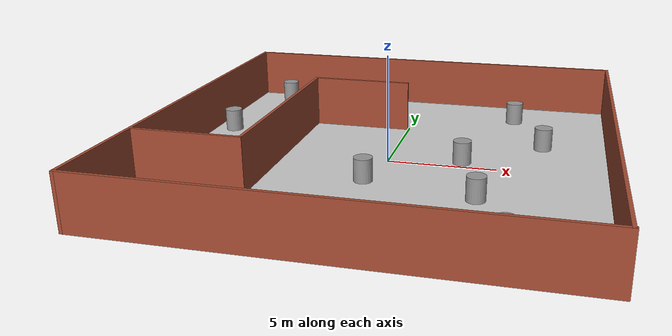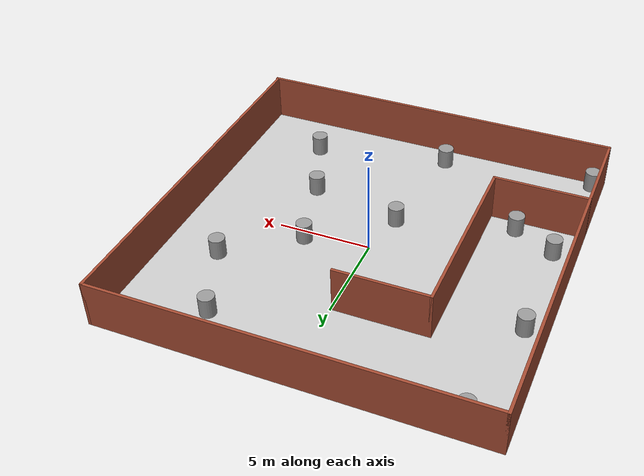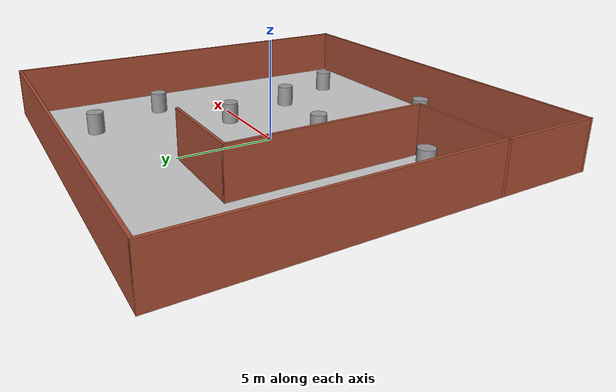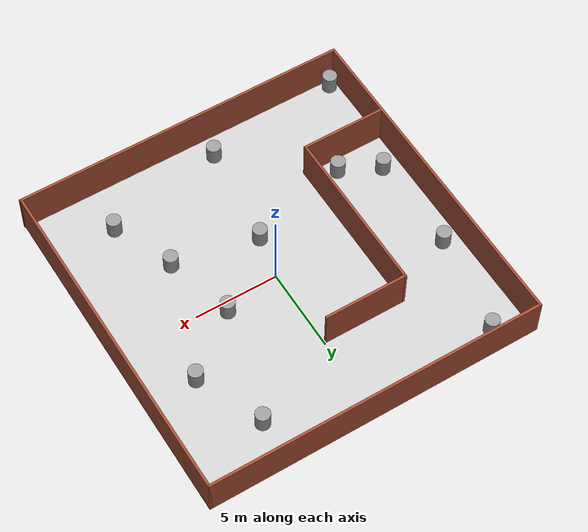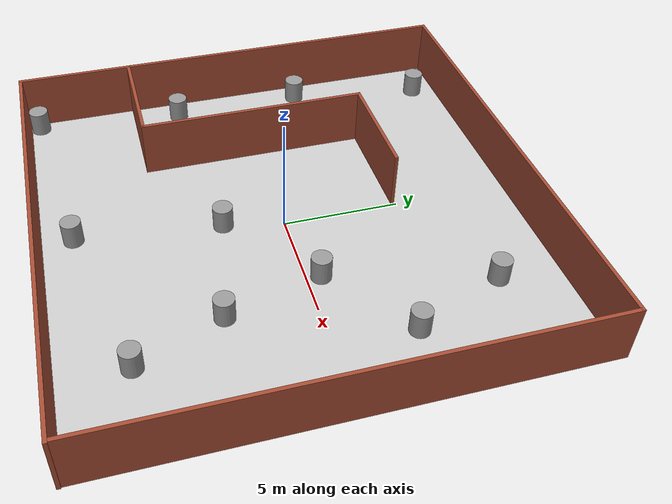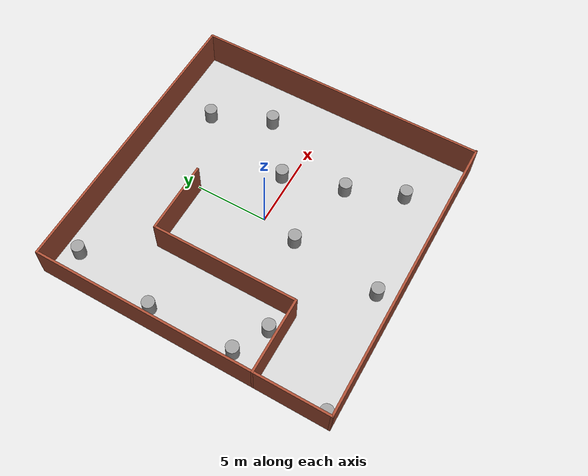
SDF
<sdf version="1.6">
 <world name="default">
  <light name="sun" type="directional">
   <pose>0 0 10 0 -0 0</pose>
   <diffuse>0.8 0.8 0.8 1</diffuse>
   <specular>0.2 0.2 0.2 1</specular>
   <attenuation>
    <range>1000</range>
    <constant>0.9</constant>
    <linear>0.01</linear>
    <quadratic>0.001</quadratic>
   </attenuation>
   <direction>-0.5 0.1 -0.9</direction>
  </light>
  <gravity>0 0 -9.8</gravity>
  <magnetic_field>6e-06 2.3e-05 -4.2e-05</magnetic_field>
  <atmosphere type="adiabatic"/>
  <physics name="default_physics" default="0" type="ode">
   <max_step_size>0.001</max_step_size>
   <real_time_factor>1</real_time_factor>
   <real_time_update_rate>1000</real_time_update_rate>
  </physics>
  <scene><ambient>0.4 0.4 0.4 1</ambient><background>0.7 0.7 0.7 1</background><shadows>1</shadows></scene>
  <spherical_coordinates>
   <surface_model>EARTH_WGS84</surface_model>
   <latitude_deg>0</latitude_deg>
   <longitude_deg>0</longitude_deg>
   <elevation>0</elevation>
   <heading_deg>0</heading_deg>
  </spherical_coordinates>
  <model name="my_ground_plane">
   <static>1</static>
   <link name="link">
    <collision name="collision">
     <geometry><plane><normal>0 0 1</normal><size>20 20</size></plane></geometry>
     <surface><friction><ode><mu>100</mu><mu2>50</mu2></ode></friction></surface>
    </collision>
    <visual name="visual">
     <cast_shadows>0</cast_shadows>
     <geometry><plane><normal>0 0 1</normal><size>20 20</size></plane></geometry>
     <material>
      <script>
       <uri>model://my_ground_plane/materials/scripts</uri>
       <uri>model://my_ground_plane/materials/textures/</uri>
       <name>MyGroundPlane/Image</name>
      </script>
     </material>
    </visual>
   </link>
  </model>
  <model name="Nuclear_Building1">
   <link name="Wall_18">
    <collision name="Wall_18_Collision">
     <geometry><box><size>20.15 0.15 2.5</size></box></geometry>
     <pose>0 0 1.25 0 -0 0</pose>
    </collision>
    <visual name="Wall_18_Visual">
     <pose>0 0 1.25 0 -0 0</pose>
     <geometry><box><size>20.15 0.15 2.5</size></box></geometry>
     <material>
      <script><uri>file://media/materials/scripts/gazebo.material</uri><name>Gazebo/Bricks</name></script>
      <ambient>1 1 1 1</ambient>
     </material>
     <meta><layer>0</layer></meta>
    </visual>
    <pose>0 -10 0 0 -0 3.14159</pose>
   </link>
   <link name="Wall_20">
    <collision name="Wall_20_Collision">
     <geometry><box><size>20.15 0.15 2.5</size></box></geometry>
     <pose>0 0 1.25 0 -0 0</pose>
    </collision>
    <visual name="Wall_20_Visual">
     <pose>0 0 1.25 0 -0 0</pose>
     <geometry><box><size>20.15 0.15 2.5</size></box></geometry>
     <material>
      <script><uri>file://media/materials/scripts/gazebo.material</uri><name>Gazebo/Bricks</name></script>
      <ambient>1 1 1 1</ambient>
     </material>
     <meta><layer>0</layer></meta>
    </visual>
    <pose>-10 0 0 0 -0 1.5708</pose>
   </link>
   <link name="Wall_22">
    <collision name="Wall_22_Collision">
     <geometry><box><size>20.15 0.15 2.5</size></box></geometry>
     <pose>0 0 1.25 0 -0 0</pose>
    </collision>
    <visual name="Wall_22_Visual">
     <pose>0 0 1.25 0 -0 0</pose>
     <geometry><box><size>20.15 0.15 2.5</size></box></geometry>
     <material>
      <script><uri>file://media/materials/scripts/gazebo.material</uri><name>Gazebo/Bricks</name></script>
      <ambient>1 1 1 1</ambient>
     </material>
     <meta><layer>0</layer></meta>
    </visual>
    <pose>9.95932 0 0 0 0 -1.5708</pose>
   </link>
   <link name="Wall_25">
    <collision name="Wall_25_Collision">
     <geometry><box><size>20.0686 0.15 2.5</size></box></geometry>
     <pose>0 0 1.25 0 -0 0</pose>
    </collision>
    <visual name="Wall_25_Visual">
     <pose>0 0 1.25 0 -0 0</pose>
     <geometry><box><size>20.0686 0.15 2.5</size></box></geometry>
     <material>
      <script><uri>file://media/materials/scripts/gazebo.material</uri><name>Gazebo/Bricks</name></script>
      <ambient>1 1 1 1</ambient>
     </material>
     <meta><layer>0</layer></meta>
    </visual>
    <pose>-0.040685 10 0 0 -0 0</pose>
   </link>
   <link name="Wall_27">
    <collision name="Wall_27_Collision">
     <geometry><box><size>5.15 0.15 2.5</size></box></geometry>
     <pose>0 0 1.25 0 -0 0</pose>
    </collision>
    <visual name="Wall_27_Visual">
     <pose>0 0 1.25 0 -0 0</pose>
     <geometry><box><size>5.15 0.15 2.5</size></box></geometry>
     <material>
      <script><uri>file://media/materials/scripts/gazebo.material</uri><name>Gazebo/Bricks</name></script>
      <ambient>1 1 1 1</ambient>
     </material>
     <meta><layer>0</layer></meta>
    </visual>
    <pose>-7.5 -5 0 0 -0 3.14159</pose>
   </link>
   <link name="Wall_29">
    <collision name="Wall_29_Collision">
     <geometry><box><size>10 0.15 2.5</size></box></geometry>
     <pose>0 0 1.25 0 -0 0</pose>
    </collision>
    <visual name="Wall_29_Visual">
     <pose>0 0 1.25 0 -0 0</pose>
     <geometry><box><size>10 0.15 2.5</size></box></geometry>
     <material>
      <script><uri>file://media/materials/scripts/gazebo.material</uri><name>Gazebo/Bricks</name></script>
      <ambient>1 1 1 1</ambient>
     </material>
     <meta><layer>0</layer></meta>
    </visual>
    <pose>-5 -0.075 0 0 -0 1.5708</pose>
   </link>
   <link name="Wall_31">
    <collision name="Wall_31_Collision">
     <geometry><box><size>5 0.15 2.5</size></box></geometry>
     <pose>0 0 1.25 0 -0 0</pose>
    </collision>
    <visual name="Wall_31_Visual">
     <pose>0 0 1.25 0 -0 0</pose>
     <geometry><box><size>5 0.15 2.5</size></box></geometry>
     <material>
      <script><uri>file://media/materials/scripts/gazebo.material</uri><name>Gazebo/Bricks</name></script>
      <ambient>1 1 1 1</ambient>
     </material>
     <meta><layer>0</layer></meta>
    </visual>
    <pose>-2.575 4.85 0 0 -0 0</pose>
   </link>
   <static>1</static>
  </model>
  <model name="unit_cylinder">
   <pose>4.49623 -3.50408 0.543148 -1e-06 -0 5e-06</pose>
   <link name="link">
    <inertial>
     <mass>1</mass>
     <inertia><ixx>0.145833</ixx><ixy>0</ixy><ixz>0</ixz><iyy>0.145833</iyy><iyz>0</iyz><izz>0.125</izz></inertia>
    </inertial>
    <collision name="collision">
     <geometry><cylinder><radius>0.425034</radius><length>1.0863</length></cylinder></geometry>
    </collision>
    <visual name="visual">
     <geometry><cylinder><radius>0.425034</radius><length>1.0863</length></cylinder></geometry>
     <material>
      <script><name>Gazebo/Grey</name><uri>file://media/materials/scripts/gazebo.material</uri></script>
     </material>
    </visual>
   </link>
  </model>
  <model name="unit_cylinder_clone">
   <pose>-0.521306 -2.49994 0.543147 -1e-06 -1e-06 5e-06</pose>
   <link name="link">
    <inertial>
     <mass>1</mass>
     <inertia><ixx>0.145833</ixx><ixy>0</ixy><ixz>0</ixz><iyy>0.145833</iyy><iyz>0</iyz><izz>0.125</izz></inertia>
    </inertial>
    <collision name="collision">
     <geometry><cylinder><radius>0.425035</radius><length>1.0863</length></cylinder></geometry>
    </collision>
    <visual name="visual">
     <geometry><cylinder><radius>0.425035</radius><length>1.0863</length></cylinder></geometry>
     <material>
      <script><name>Gazebo/Grey</name><uri>file://media/materials/scripts/gazebo.material</uri></script>
     </material>
    </visual>
   </link>
  </model>
  <model name="unit_cylinder_clone_0">
   <pose>3.35939 0.604097 0.543143 1e-06 1e-06 5e-06</pose>
   <link name="link">
    <inertial>
     <mass>1</mass>
     <inertia><ixx>0.145833</ixx><ixy>0</ixy><ixz>0</ixz><iyy>0.145833</iyy><iyz>0</iyz><izz>0.125</izz></inertia>
    </inertial>
    <collision name="collision">
     <geometry><cylinder><radius>0.425035</radius><length>1.0863</length></cylinder></geometry>
    </collision>
    <visual name="visual">
     <geometry><cylinder><radius>0.425035</radius><length>1.0863</length></cylinder></geometry>
     <material>
      <script><name>Gazebo/Grey</name><uri>file://media/materials/scripts/gazebo.material</uri></script>
     </material>
    </visual>
   </link>
  </model>
  <model name="unit_cylinder_clone_2">
   <pose>-9.44797 -9.47704 0.543143 1e-06 1e-06 5e-06</pose>
   <link name="link">
    <inertial>
     <mass>1</mass>
     <inertia><ixx>0.145833</ixx><ixy>0</ixy><ixz>0</ixz><iyy>0.145833</iyy><iyz>0</iyz><izz>0.125</izz></inertia>
    </inertial>
    <collision name="collision">
     <geometry><cylinder><radius>0.425035</radius><length>1.0863</length></cylinder></geometry>
    </collision>
    <visual name="visual">
     <geometry><cylinder><radius>0.425035</radius><length>1.0863</length></cylinder></geometry>
     <material>
      <script><name>Gazebo/Grey</name><uri>file://media/materials/scripts/gazebo.material</uri></script>
     </material>
    </visual>
   </link>
  </model>
  <model name="unit_cylinder_clone_3">
   <pose>-1.21574 -8.63226 0.543147 -1e-06 -1e-06 5e-06</pose>
   <link name="link">
    <inertial>
     <mass>1</mass>
     <inertia><ixx>0.145833</ixx><ixy>0</ixy><ixz>0</ixz><iyy>0.145833</iyy><iyz>0</iyz><izz>0.125</izz></inertia>
    </inertial>
    <collision name="collision">
     <geometry><cylinder><radius>0.425035</radius><length>1.0863</length></cylinder></geometry>
    </collision>
    <visual name="visual">
     <geometry><cylinder><radius>0.425035</radius><length>1.0863</length></cylinder></geometry>
     <material>
      <script><name>Gazebo/Grey</name><uri>file://media/materials/scripts/gazebo.material</uri></script>
     </material>
    </visual>
   </link>
  </model>
  <model name="unit_cylinder_clone_4">
   <pose>6.91062 3.33481 0.543143 1e-06 1e-06 5e-06</pose>
   <link name="link">
    <inertial>
     <mass>1</mass>
     <inertia><ixx>0.145833</ixx><ixy>0</ixy><ixz>0</ixz><iyy>0.145833</iyy><iyz>0</iyz><izz>0.125</izz></inertia>
    </inertial>
    <collision name="collision">
     <geometry><cylinder><radius>0.425035</radius><length>1.0863</length></cylinder></geometry>
    </collision>
    <visual name="visual">
     <geometry><cylinder><radius>0.425035</radius><length>1.0863</length></cylinder></geometry>
     <material>
      <script><name>Gazebo/Grey</name><uri>file://media/materials/scripts/gazebo.material</uri></script>
     </material>
    </visual>
   </link>
  </model>
  <model name="unit_cylinder_clone_5">
   <pose>-8.84908 -2.94713 0.543143 1e-06 1e-06 5e-06</pose>
   <link name="link">
    <inertial>
     <mass>1</mass>
     <inertia><ixx>0.145833</ixx><ixy>0</ixy><ixz>0</ixz><iyy>0.145833</iyy><iyz>0</iyz><izz>0.125</izz></inertia>
    </inertial>
    <collision name="collision">
     <geometry><cylinder><radius>0.425035</radius><length>1.0863</length></cylinder></geometry>
    </collision>
    <visual name="visual">
     <geometry><cylinder><radius>0.425035</radius><length>1.0863</length></cylinder></geometry>
     <material>
      <script><name>Gazebo/Grey</name><uri>file://media/materials/scripts/gazebo.material</uri></script>
     </material>
    </visual>
   </link>
  </model>
  <model name="unit_cylinder_clone_6">
   <pose>-6.58198 -4.1004 0.543147 -1e-06 -1e-06 5e-06</pose>
   <link name="link">
    <inertial>
     <mass>1</mass>
     <inertia><ixx>0.145833</ixx><ixy>0</ixy><ixz>0</ixz><iyy>0.145833</iyy><iyz>0</iyz><izz>0.125</izz></inertia>
    </inertial>
    <collision name="collision">
     <geometry><cylinder><radius>0.425035</radius><length>1.0863</length></cylinder></geometry>
    </collision>
    <visual name="visual">
     <geometry><cylinder><radius>0.425035</radius><length>1.0863</length></cylinder></geometry>
     <material>
      <script><name>Gazebo/Grey</name><uri>file://media/materials/scripts/gazebo.material</uri></script>
     </material>
    </visual>
   </link>
  </model>
  <model name="unit_cylinder_clone_7">
   <pose>-8.93867 2.88964 0.543143 1e-06 1e-06 5e-06</pose>
   <link name="link">
    <inertial>
     <mass>1</mass>
     <inertia><ixx>0.145833</ixx><ixy>0</ixy><ixz>0</ixz><iyy>0.145833</iyy><iyz>0</iyz><izz>0.125</izz></inertia>
    </inertial>
    <collision name="collision">
     <geometry><cylinder><radius>0.425035</radius><length>1.0863</length></cylinder></geometry>
    </collision>
    <visual name="visual">
     <geometry><cylinder><radius>0.425035</radius><length>1.0863</length></cylinder></geometry>
     <material>
      <script><name>Gazebo/Grey</name><uri>file://media/materials/scripts/gazebo.material</uri></script>
     </material>
    </visual>
   </link>
  </model>
  <model name="unit_cylinder_clone_8">
   <pose>5.25481 7.29741 0.543147 -1e-06 -1e-06 5e-06</pose>
   <link name="link">
    <inertial>
     <mass>1</mass>
     <inertia><ixx>0.145833</ixx><ixy>0</ixy><ixz>0</ixz><iyy>0.145833</iyy><iyz>0</iyz><izz>0.125</izz></inertia>
    </inertial>
    <collision name="collision">
     <geometry><cylinder><radius>0.425035</radius><length>1.0863</length></cylinder></geometry>
    </collision>
    <visual name="visual">
     <geometry><cylinder><radius>0.425035</radius><length>1.0863</length></cylinder></geometry>
     <material>
      <script><name>Gazebo/Grey</name><uri>file://media/materials/scripts/gazebo.material</uri></script>
     </material>
    </visual>
   </link>
  </model>
  <model name="unit_cylinder_clone_9">
   <pose>-7.97513 8.82676 0.543143 1e-06 1e-06 5e-06</pose>
   <link name="link">
    <inertial>
     <mass>1</mass>
     <inertia><ixx>0.145833</ixx><ixy>0</ixy><ixz>0</ixz><iyy>0.145833</iyy><iyz>0</iyz><izz>0.125</izz></inertia>
    </inertial>
    <collision name="collision">
     <geometry><cylinder><radius>0.425035</radius><length>1.0863</length></cylinder></geometry>
    </collision>
    <visual name="visual">
     <geometry><cylinder><radius>0.425035</radius><length>1.0863</length></cylinder></geometry>
     <material>
      <script><name>Gazebo/Grey</name><uri>file://media/materials/scripts/gazebo.material</uri></script>
     </material>
    </visual>
   </link>
  </model>
  <model name="unit_cylinder_clone_1">
   <pose>5.97298 -7.15889 0.543148 -1e-06 -0 5e-06</pose>
   <link name="link">
    <inertial>
     <mass>1</mass>
     <inertia><ixx>0.145833</ixx><ixy>0</ixy><ixz>0</ixz><iyy>0.145833</iyy><iyz>0</iyz><izz>0.125</izz></inertia>
    </inertial>
    <collision name="collision">
     <geometry><cylinder><radius>0.425035</radius><length>1.0863</length></cylinder></geometry>
    </collision>
    <visual name="visual">
     <geometry><cylinder><radius>0.425035</radius><length>1.0863</length></cylinder></geometry>
     <material>
      <script><name>Gazebo/Grey</name><uri>file://media/materials/scripts/gazebo.material</uri></script>
     </material>
    </visual>
   </link>
  </model>
 </world>
</sdf>
